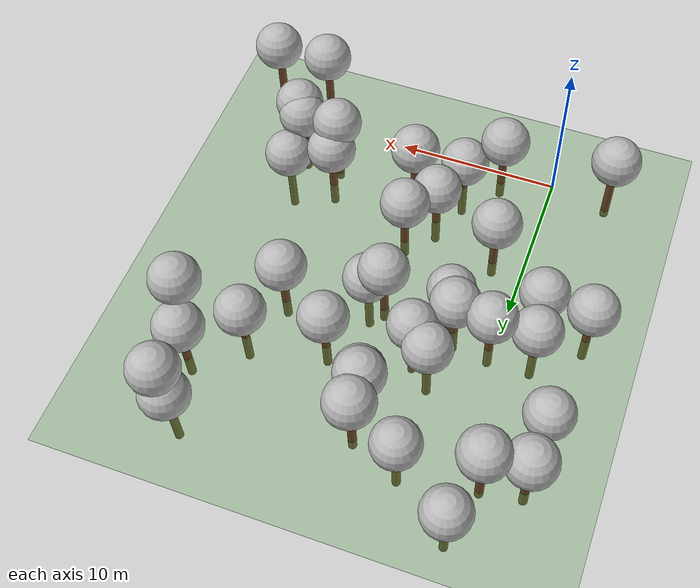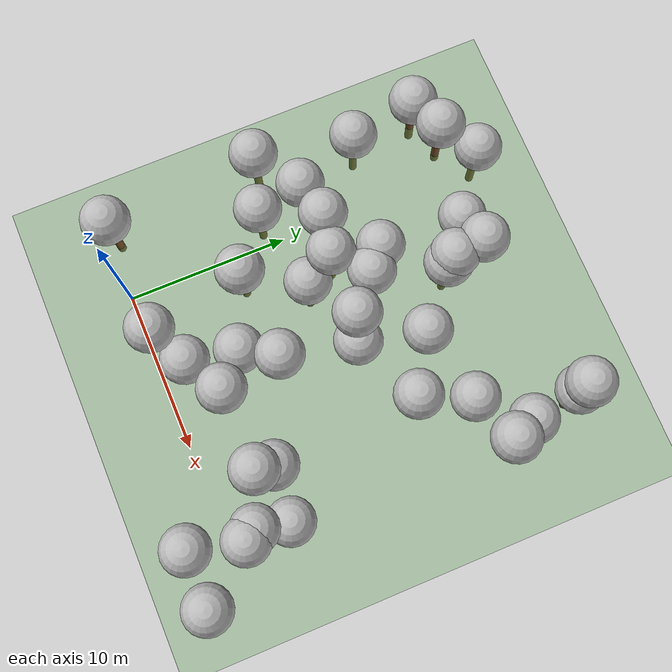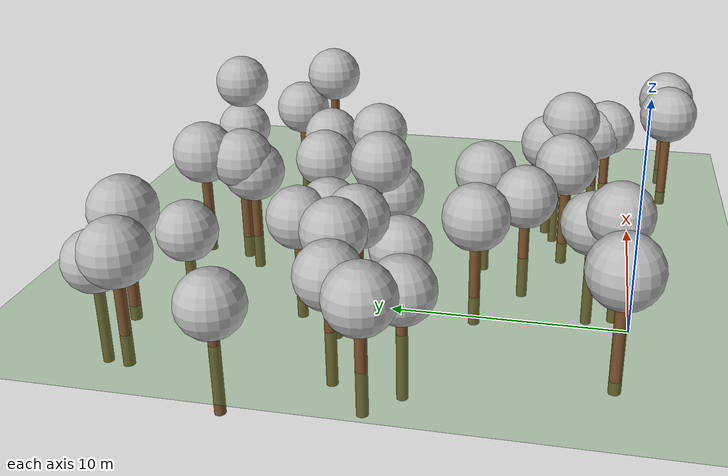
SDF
<sdf version="1.5">
 <world name="default">
  <model name="tree_simple497">
   <static>1</static>
   <link name="link">
    <pose>0 0 0.1 0 -0 0</pose>
    <collision name="collision_trunk">
     <pose>0 0 2 0 -0 0</pose>
     <geometry><cylinder><radius>0.25</radius><length>4</length></cylinder></geometry>
    </collision>
    <collision name="collision_treetop">
     <pose>0 0 5.2 0 -0 0</pose>
     <geometry><sphere><radius>1.5</radius></sphere></geometry>
    </collision>
    <visual name="trunk">
     <pose>0 0 2 0 -0 0</pose>
     <geometry><cylinder><radius>0.25</radius><length>4</length></cylinder></geometry>
     <material>
      <script>
       <uri>model://tree_simple/scripts</uri>
       <uri>model://tree_simple/materials/textures</uri>
       <name>TreeSimple/Trunk</name>
      </script>
     </material>
    </visual>
    <visual name="treetop">
     <pose>0 0 5.2 0 -0 0</pose>
     <geometry><sphere><radius>1.5</radius></sphere></geometry>
     <material>
      <script>
       <uri>model://tree_simple/scripts</uri>
       <uri>model://tree_simple/materials/textures</uri>
       <name>TreeSimple/Treetop</name>
      </script>
     </material>
    </visual>
   </link>
   <pose>16.5730666381 19.0016793819 -1.9084397085814553 0 -0 0</pose>
  </model>
  <model name="tree_simple495">
   <static>1</static>
   <link name="link">
    <pose>0 0 0.1 0 -0 0</pose>
    <collision name="collision_trunk">
     <pose>0 0 2 0 -0 0</pose>
     <geometry><cylinder><radius>0.25</radius><length>4</length></cylinder></geometry>
    </collision>
    <collision name="collision_treetop">
     <pose>0 0 5.2 0 -0 0</pose>
     <geometry><sphere><radius>1.5</radius></sphere></geometry>
    </collision>
    <visual name="trunk">
     <pose>0 0 2 0 -0 0</pose>
     <geometry><cylinder><radius>0.25</radius><length>4</length></cylinder></geometry>
     <material>
      <script>
       <uri>model://tree_simple/scripts</uri>
       <uri>model://tree_simple/materials/textures</uri>
       <name>TreeSimple/Trunk</name>
      </script>
     </material>
    </visual>
    <visual name="treetop">
     <pose>0 0 5.2 0 -0 0</pose>
     <geometry><sphere><radius>1.5</radius></sphere></geometry>
     <material>
      <script>
       <uri>model://tree_simple/scripts</uri>
       <uri>model://tree_simple/materials/textures</uri>
       <name>TreeSimple/Treetop</name>
      </script>
     </material>
    </visual>
   </link>
   <pose>13.2663357304 3.23501246435 -0.6643117824017684 0 -0 0</pose>
  </model>
  <model name="tree_simple486">
   <static>1</static>
   <link name="link">
    <pose>0 0 0.1 0 -0 0</pose>
    <collision name="collision_trunk">
     <pose>0 0 2 0 -0 0</pose>
     <geometry><cylinder><radius>0.25</radius><length>4</length></cylinder></geometry>
    </collision>
    <collision name="collision_treetop">
     <pose>0 0 5.2 0 -0 0</pose>
     <geometry><sphere><radius>1.5</radius></sphere></geometry>
    </collision>
    <visual name="trunk">
     <pose>0 0 2 0 -0 0</pose>
     <geometry><cylinder><radius>0.25</radius><length>4</length></cylinder></geometry>
     <material>
      <script>
       <uri>model://tree_simple/scripts</uri>
       <uri>model://tree_simple/materials/textures</uri>
       <name>TreeSimple/Trunk</name>
      </script>
     </material>
    </visual>
    <visual name="treetop">
     <pose>0 0 5.2 0 -0 0</pose>
     <geometry><sphere><radius>1.5</radius></sphere></geometry>
     <material>
      <script>
       <uri>model://tree_simple/scripts</uri>
       <uri>model://tree_simple/materials/textures</uri>
       <name>TreeSimple/Treetop</name>
      </script>
     </material>
    </visual>
   </link>
   <pose>8.18281559396 11.6524151823 -3.3027352705335433 0 -0 0</pose>
  </model>
  <model name="tree_simple480">
   <static>1</static>
   <link name="link">
    <pose>0 0 0.1 0 -0 0</pose>
    <collision name="collision_trunk">
     <pose>0 0 2 0 -0 0</pose>
     <geometry><cylinder><radius>0.25</radius><length>4</length></cylinder></geometry>
    </collision>
    <collision name="collision_treetop">
     <pose>0 0 5.2 0 -0 0</pose>
     <geometry><sphere><radius>1.5</radius></sphere></geometry>
    </collision>
    <visual name="trunk">
     <pose>0 0 2 0 -0 0</pose>
     <geometry><cylinder><radius>0.25</radius><length>4</length></cylinder></geometry>
     <material>
      <script>
       <uri>model://tree_simple/scripts</uri>
       <uri>model://tree_simple/materials/textures</uri>
       <name>TreeSimple/Trunk</name>
      </script>
     </material>
    </visual>
    <visual name="treetop">
     <pose>0 0 5.2 0 -0 0</pose>
     <geometry><sphere><radius>1.5</radius></sphere></geometry>
     <material>
      <script>
       <uri>model://tree_simple/scripts</uri>
       <uri>model://tree_simple/materials/textures</uri>
       <name>TreeSimple/Treetop</name>
      </script>
     </material>
    </visual>
   </link>
   <pose>-2.16211412072 12.1351070175 -2.756840422379751 0 -0 0</pose>
  </model>
  <model name="tree_simple471">
   <static>1</static>
   <link name="link">
    <pose>0 0 0.1 0 -0 0</pose>
    <collision name="collision_trunk">
     <pose>0 0 2 0 -0 0</pose>
     <geometry><cylinder><radius>0.25</radius><length>4</length></cylinder></geometry>
    </collision>
    <collision name="collision_treetop">
     <pose>0 0 5.2 0 -0 0</pose>
     <geometry><sphere><radius>1.5</radius></sphere></geometry>
    </collision>
    <visual name="trunk">
     <pose>0 0 2 0 -0 0</pose>
     <geometry><cylinder><radius>0.25</radius><length>4</length></cylinder></geometry>
     <material>
      <script>
       <uri>model://tree_simple/scripts</uri>
       <uri>model://tree_simple/materials/textures</uri>
       <name>TreeSimple/Trunk</name>
      </script>
     </material>
    </visual>
    <visual name="treetop">
     <pose>0 0 5.2 0 -0 0</pose>
     <geometry><sphere><radius>1.5</radius></sphere></geometry>
     <material>
      <script>
       <uri>model://tree_simple/scripts</uri>
       <uri>model://tree_simple/materials/textures</uri>
       <name>TreeSimple/Treetop</name>
      </script>
     </material>
    </visual>
   </link>
   <pose>-4.10985349052 16.4703272545 -3.4772862929500645 0 -0 0</pose>
  </model>
  <model name="tree_simple465">
   <static>1</static>
   <link name="link">
    <pose>0 0 0.1 0 -0 0</pose>
    <collision name="collision_trunk">
     <pose>0 0 2 0 -0 0</pose>
     <geometry><cylinder><radius>0.25</radius><length>4</length></cylinder></geometry>
    </collision>
    <collision name="collision_treetop">
     <pose>0 0 5.2 0 -0 0</pose>
     <geometry><sphere><radius>1.5</radius></sphere></geometry>
    </collision>
    <visual name="trunk">
     <pose>0 0 2 0 -0 0</pose>
     <geometry><cylinder><radius>0.25</radius><length>4</length></cylinder></geometry>
     <material>
      <script>
       <uri>model://tree_simple/scripts</uri>
       <uri>model://tree_simple/materials/textures</uri>
       <name>TreeSimple/Trunk</name>
      </script>
     </material>
    </visual>
    <visual name="treetop">
     <pose>0 0 5.2 0 -0 0</pose>
     <geometry><sphere><radius>1.5</radius></sphere></geometry>
     <material>
      <script>
       <uri>model://tree_simple/scripts</uri>
       <uri>model://tree_simple/materials/textures</uri>
       <name>TreeSimple/Treetop</name>
      </script>
     </material>
    </visual>
   </link>
   <pose>5.78708546562 20.6382949275 -0.9649354823477225 0 -0 0</pose>
  </model>
  <model name="tree_simple450">
   <static>1</static>
   <link name="link">
    <pose>0 0 0.1 0 -0 0</pose>
    <collision name="collision_trunk">
     <pose>0 0 2 0 -0 0</pose>
     <geometry><cylinder><radius>0.25</radius><length>4</length></cylinder></geometry>
    </collision>
    <collision name="collision_treetop">
     <pose>0 0 5.2 0 -0 0</pose>
     <geometry><sphere><radius>1.5</radius></sphere></geometry>
    </collision>
    <visual name="trunk">
     <pose>0 0 2 0 -0 0</pose>
     <geometry><cylinder><radius>0.25</radius><length>4</length></cylinder></geometry>
     <material>
      <script>
       <uri>model://tree_simple/scripts</uri>
       <uri>model://tree_simple/materials/textures</uri>
       <name>TreeSimple/Trunk</name>
      </script>
     </material>
    </visual>
    <visual name="treetop">
     <pose>0 0 5.2 0 -0 0</pose>
     <geometry><sphere><radius>1.5</radius></sphere></geometry>
     <material>
      <script>
       <uri>model://tree_simple/scripts</uri>
       <uri>model://tree_simple/materials/textures</uri>
       <name>TreeSimple/Treetop</name>
      </script>
     </material>
    </visual>
   </link>
   <pose>16.0273432372 22.5148519884 -0.4001102965959831 0 -0 0</pose>
  </model>
  <model name="tree_simple442">
   <static>1</static>
   <link name="link">
    <pose>0 0 0.1 0 -0 0</pose>
    <collision name="collision_trunk">
     <pose>0 0 2 0 -0 0</pose>
     <geometry><cylinder><radius>0.25</radius><length>4</length></cylinder></geometry>
    </collision>
    <collision name="collision_treetop">
     <pose>0 0 5.2 0 -0 0</pose>
     <geometry><sphere><radius>1.5</radius></sphere></geometry>
    </collision>
    <visual name="trunk">
     <pose>0 0 2 0 -0 0</pose>
     <geometry><cylinder><radius>0.25</radius><length>4</length></cylinder></geometry>
     <material>
      <script>
       <uri>model://tree_simple/scripts</uri>
       <uri>model://tree_simple/materials/textures</uri>
       <name>TreeSimple/Trunk</name>
      </script>
     </material>
    </visual>
    <visual name="treetop">
     <pose>0 0 5.2 0 -0 0</pose>
     <geometry><sphere><radius>1.5</radius></sphere></geometry>
     <material>
      <script>
       <uri>model://tree_simple/scripts</uri>
       <uri>model://tree_simple/materials/textures</uri>
       <name>TreeSimple/Treetop</name>
      </script>
     </material>
    </visual>
   </link>
   <pose>-1.68249170611 21.1094247696 -0.8250851277611297 0 -0 0</pose>
  </model>
  <model name="tree_simple421">
   <static>1</static>
   <link name="link">
    <pose>0 0 0.1 0 -0 0</pose>
    <collision name="collision_trunk">
     <pose>0 0 2 0 -0 0</pose>
     <geometry><cylinder><radius>0.25</radius><length>4</length></cylinder></geometry>
    </collision>
    <collision name="collision_treetop">
     <pose>0 0 5.2 0 -0 0</pose>
     <geometry><sphere><radius>1.5</radius></sphere></geometry>
    </collision>
    <visual name="trunk">
     <pose>0 0 2 0 -0 0</pose>
     <geometry><cylinder><radius>0.25</radius><length>4</length></cylinder></geometry>
     <material>
      <script>
       <uri>model://tree_simple/scripts</uri>
       <uri>model://tree_simple/materials/textures</uri>
       <name>TreeSimple/Trunk</name>
      </script>
     </material>
    </visual>
    <visual name="treetop">
     <pose>0 0 5.2 0 -0 0</pose>
     <geometry><sphere><radius>1.5</radius></sphere></geometry>
     <material>
      <script>
       <uri>model://tree_simple/scripts</uri>
       <uri>model://tree_simple/materials/textures</uri>
       <name>TreeSimple/Treetop</name>
      </script>
     </material>
    </visual>
   </link>
   <pose>7.02492588621 12.0559728025 -1.294714465983816 0 -0 0</pose>
  </model>
  <model name="tree_simple417">
   <static>1</static>
   <link name="link">
    <pose>0 0 0.1 0 -0 0</pose>
    <collision name="collision_trunk">
     <pose>0 0 2 0 -0 0</pose>
     <geometry><cylinder><radius>0.25</radius><length>4</length></cylinder></geometry>
    </collision>
    <collision name="collision_treetop">
     <pose>0 0 5.2 0 -0 0</pose>
     <geometry><sphere><radius>1.5</radius></sphere></geometry>
    </collision>
    <visual name="trunk">
     <pose>0 0 2 0 -0 0</pose>
     <geometry><cylinder><radius>0.25</radius><length>4</length></cylinder></geometry>
     <material>
      <script>
       <uri>model://tree_simple/scripts</uri>
       <uri>model://tree_simple/materials/textures</uri>
       <name>TreeSimple/Trunk</name>
      </script>
     </material>
    </visual>
    <visual name="treetop">
     <pose>0 0 5.2 0 -0 0</pose>
     <geometry><sphere><radius>1.5</radius></sphere></geometry>
     <material>
      <script>
       <uri>model://tree_simple/scripts</uri>
       <uri>model://tree_simple/materials/textures</uri>
       <name>TreeSimple/Treetop</name>
      </script>
     </material>
    </visual>
   </link>
   <pose>-1.82310579314 9.17527441854 -3.3135350662541594 0 -0 0</pose>
  </model>
  <model name="tree_simple412">
   <static>1</static>
   <link name="link">
    <pose>0 0 0.1 0 -0 0</pose>
    <collision name="collision_trunk">
     <pose>0 0 2 0 -0 0</pose>
     <geometry><cylinder><radius>0.25</radius><length>4</length></cylinder></geometry>
    </collision>
    <collision name="collision_treetop">
     <pose>0 0 5.2 0 -0 0</pose>
     <geometry><sphere><radius>1.5</radius></sphere></geometry>
    </collision>
    <visual name="trunk">
     <pose>0 0 2 0 -0 0</pose>
     <geometry><cylinder><radius>0.25</radius><length>4</length></cylinder></geometry>
     <material>
      <script>
       <uri>model://tree_simple/scripts</uri>
       <uri>model://tree_simple/materials/textures</uri>
       <name>TreeSimple/Trunk</name>
      </script>
     </material>
    </visual>
    <visual name="treetop">
     <pose>0 0 5.2 0 -0 0</pose>
     <geometry><sphere><radius>1.5</radius></sphere></geometry>
     <material>
      <script>
       <uri>model://tree_simple/scripts</uri>
       <uri>model://tree_simple/materials/textures</uri>
       <name>TreeSimple/Treetop</name>
      </script>
     </material>
    </visual>
   </link>
   <pose>1.94235434688 6.68973059551 -1.5201629079554544 0 -0 0</pose>
  </model>
  <model name="tree_simple376">
   <static>1</static>
   <link name="link">
    <pose>0 0 0.1 0 -0 0</pose>
    <collision name="collision_trunk">
     <pose>0 0 2 0 -0 0</pose>
     <geometry><cylinder><radius>0.25</radius><length>4</length></cylinder></geometry>
    </collision>
    <collision name="collision_treetop">
     <pose>0 0 5.2 0 -0 0</pose>
     <geometry><sphere><radius>1.5</radius></sphere></geometry>
    </collision>
    <visual name="trunk">
     <pose>0 0 2 0 -0 0</pose>
     <geometry><cylinder><radius>0.25</radius><length>4</length></cylinder></geometry>
     <material>
      <script>
       <uri>model://tree_simple/scripts</uri>
       <uri>model://tree_simple/materials/textures</uri>
       <name>TreeSimple/Trunk</name>
      </script>
     </material>
    </visual>
    <visual name="treetop">
     <pose>0 0 5.2 0 -0 0</pose>
     <geometry><sphere><radius>1.5</radius></sphere></geometry>
     <material>
      <script>
       <uri>model://tree_simple/scripts</uri>
       <uri>model://tree_simple/materials/textures</uri>
       <name>TreeSimple/Treetop</name>
      </script>
     </material>
    </visual>
   </link>
   <pose>-3.57495660346 0.511559407044 -0.6990447691165629 0 -0 0</pose>
  </model>
  <model name="tree_simple350">
   <static>1</static>
   <link name="link">
    <pose>0 0 0.1 0 -0 0</pose>
    <collision name="collision_trunk">
     <pose>0 0 2 0 -0 0</pose>
     <geometry><cylinder><radius>0.25</radius><length>4</length></cylinder></geometry>
    </collision>
    <collision name="collision_treetop">
     <pose>0 0 5.2 0 -0 0</pose>
     <geometry><sphere><radius>1.5</radius></sphere></geometry>
    </collision>
    <visual name="trunk">
     <pose>0 0 2 0 -0 0</pose>
     <geometry><cylinder><radius>0.25</radius><length>4</length></cylinder></geometry>
     <material>
      <script>
       <uri>model://tree_simple/scripts</uri>
       <uri>model://tree_simple/materials/textures</uri>
       <name>TreeSimple/Trunk</name>
      </script>
     </material>
    </visual>
    <visual name="treetop">
     <pose>0 0 5.2 0 -0 0</pose>
     <geometry><sphere><radius>1.5</radius></sphere></geometry>
     <material>
      <script>
       <uri>model://tree_simple/scripts</uri>
       <uri>model://tree_simple/materials/textures</uri>
       <name>TreeSimple/Treetop</name>
      </script>
     </material>
    </visual>
   </link>
   <pose>5.40258361507 1.7380066323 -2.9412074479430474 0 -0 0</pose>
  </model>
  <model name="tree_simple346">
   <static>1</static>
   <link name="link">
    <pose>0 0 0.1 0 -0 0</pose>
    <collision name="collision_trunk">
     <pose>0 0 2 0 -0 0</pose>
     <geometry><cylinder><radius>0.25</radius><length>4</length></cylinder></geometry>
    </collision>
    <collision name="collision_treetop">
     <pose>0 0 5.2 0 -0 0</pose>
     <geometry><sphere><radius>1.5</radius></sphere></geometry>
    </collision>
    <visual name="trunk">
     <pose>0 0 2 0 -0 0</pose>
     <geometry><cylinder><radius>0.25</radius><length>4</length></cylinder></geometry>
     <material>
      <script>
       <uri>model://tree_simple/scripts</uri>
       <uri>model://tree_simple/materials/textures</uri>
       <name>TreeSimple/Trunk</name>
      </script>
     </material>
    </visual>
    <visual name="treetop">
     <pose>0 0 5.2 0 -0 0</pose>
     <geometry><sphere><radius>1.5</radius></sphere></geometry>
     <material>
      <script>
       <uri>model://tree_simple/scripts</uri>
       <uri>model://tree_simple/materials/textures</uri>
       <name>TreeSimple/Treetop</name>
      </script>
     </material>
    </visual>
   </link>
   <pose>6.18558583868 4.91340003373 -2.2031794522893877 0 -0 0</pose>
  </model>
  <model name="tree_simple324">
   <static>1</static>
   <link name="link">
    <pose>0 0 0.1 0 -0 0</pose>
    <collision name="collision_trunk">
     <pose>0 0 2 0 -0 0</pose>
     <geometry><cylinder><radius>0.25</radius><length>4</length></cylinder></geometry>
    </collision>
    <collision name="collision_treetop">
     <pose>0 0 5.2 0 -0 0</pose>
     <geometry><sphere><radius>1.5</radius></sphere></geometry>
    </collision>
    <visual name="trunk">
     <pose>0 0 2 0 -0 0</pose>
     <geometry><cylinder><radius>0.25</radius><length>4</length></cylinder></geometry>
     <material>
      <script>
       <uri>model://tree_simple/scripts</uri>
       <uri>model://tree_simple/materials/textures</uri>
       <name>TreeSimple/Trunk</name>
      </script>
     </material>
    </visual>
    <visual name="treetop">
     <pose>0 0 5.2 0 -0 0</pose>
     <geometry><sphere><radius>1.5</radius></sphere></geometry>
     <material>
      <script>
       <uri>model://tree_simple/scripts</uri>
       <uri>model://tree_simple/materials/textures</uri>
       <name>TreeSimple/Treetop</name>
      </script>
     </material>
    </visual>
   </link>
   <pose>2.67974288493 12.1656578915 -2.3081157315531735 0 -0 0</pose>
  </model>
  <model name="tree_simple316">
   <static>1</static>
   <link name="link">
    <pose>0 0 0.1 0 -0 0</pose>
    <collision name="collision_trunk">
     <pose>0 0 2 0 -0 0</pose>
     <geometry><cylinder><radius>0.25</radius><length>4</length></cylinder></geometry>
    </collision>
    <collision name="collision_treetop">
     <pose>0 0 5.2 0 -0 0</pose>
     <geometry><sphere><radius>1.5</radius></sphere></geometry>
    </collision>
    <visual name="trunk">
     <pose>0 0 2 0 -0 0</pose>
     <geometry><cylinder><radius>0.25</radius><length>4</length></cylinder></geometry>
     <material>
      <script>
       <uri>model://tree_simple/scripts</uri>
       <uri>model://tree_simple/materials/textures</uri>
       <name>TreeSimple/Trunk</name>
      </script>
     </material>
    </visual>
    <visual name="treetop">
     <pose>0 0 5.2 0 -0 0</pose>
     <geometry><sphere><radius>1.5</radius></sphere></geometry>
     <material>
      <script>
       <uri>model://tree_simple/scripts</uri>
       <uri>model://tree_simple/materials/textures</uri>
       <name>TreeSimple/Treetop</name>
      </script>
     </material>
    </visual>
   </link>
   <pose>19.3529599153 -1.91242662106 -0.9998372279866747 0 -0 0</pose>
  </model>
  <model name="tree_simple314">
   <static>1</static>
   <link name="link">
    <pose>0 0 0.1 0 -0 0</pose>
    <collision name="collision_trunk">
     <pose>0 0 2 0 -0 0</pose>
     <geometry><cylinder><radius>0.25</radius><length>4</length></cylinder></geometry>
    </collision>
    <collision name="collision_treetop">
     <pose>0 0 5.2 0 -0 0</pose>
     <geometry><sphere><radius>1.5</radius></sphere></geometry>
    </collision>
    <visual name="trunk">
     <pose>0 0 2 0 -0 0</pose>
     <geometry><cylinder><radius>0.25</radius><length>4</length></cylinder></geometry>
     <material>
      <script>
       <uri>model://tree_simple/scripts</uri>
       <uri>model://tree_simple/materials/textures</uri>
       <name>TreeSimple/Trunk</name>
      </script>
     </material>
    </visual>
    <visual name="treetop">
     <pose>0 0 5.2 0 -0 0</pose>
     <geometry><sphere><radius>1.5</radius></sphere></geometry>
     <material>
      <script>
       <uri>model://tree_simple/scripts</uri>
       <uri>model://tree_simple/materials/textures</uri>
       <name>TreeSimple/Treetop</name>
      </script>
     </material>
    </visual>
   </link>
   <pose>15.9305866253 -1.88175491407 -0.8595585442341938 0 -0 0</pose>
  </model>
  <model name="tree_simple308">
   <static>1</static>
   <link name="link">
    <pose>0 0 0.1 0 -0 0</pose>
    <collision name="collision_trunk">
     <pose>0 0 2 0 -0 0</pose>
     <geometry><cylinder><radius>0.25</radius><length>4</length></cylinder></geometry>
    </collision>
    <collision name="collision_treetop">
     <pose>0 0 5.2 0 -0 0</pose>
     <geometry><sphere><radius>1.5</radius></sphere></geometry>
    </collision>
    <visual name="trunk">
     <pose>0 0 2 0 -0 0</pose>
     <geometry><cylinder><radius>0.25</radius><length>4</length></cylinder></geometry>
     <material>
      <script>
       <uri>model://tree_simple/scripts</uri>
       <uri>model://tree_simple/materials/textures</uri>
       <name>TreeSimple/Trunk</name>
      </script>
     </material>
    </visual>
    <visual name="treetop">
     <pose>0 0 5.2 0 -0 0</pose>
     <geometry><sphere><radius>1.5</radius></sphere></geometry>
     <material>
      <script>
       <uri>model://tree_simple/scripts</uri>
       <uri>model://tree_simple/materials/textures</uri>
       <name>TreeSimple/Treetop</name>
      </script>
     </material>
    </visual>
   </link>
   <pose>3.23733276298 0.582978933188 -1.4821648328928578 0 -0 0</pose>
  </model>
  <model name="tree_simple304">
   <static>1</static>
   <link name="link">
    <pose>0 0 0.1 0 -0 0</pose>
    <collision name="collision_trunk">
     <pose>0 0 2 0 -0 0</pose>
     <geometry><cylinder><radius>0.25</radius><length>4</length></cylinder></geometry>
    </collision>
    <collision name="collision_treetop">
     <pose>0 0 5.2 0 -0 0</pose>
     <geometry><sphere><radius>1.5</radius></sphere></geometry>
    </collision>
    <visual name="trunk">
     <pose>0 0 2 0 -0 0</pose>
     <geometry><cylinder><radius>0.25</radius><length>4</length></cylinder></geometry>
     <material>
      <script>
       <uri>model://tree_simple/scripts</uri>
       <uri>model://tree_simple/materials/textures</uri>
       <name>TreeSimple/Trunk</name>
      </script>
     </material>
    </visual>
    <visual name="treetop">
     <pose>0 0 5.2 0 -0 0</pose>
     <geometry><sphere><radius>1.5</radius></sphere></geometry>
     <material>
      <script>
       <uri>model://tree_simple/scripts</uri>
       <uri>model://tree_simple/materials/textures</uri>
       <name>TreeSimple/Treetop</name>
      </script>
     </material>
    </visual>
   </link>
   <pose>12.7492321523 13.4736505169 -1.7416331535165575 0 -0 0</pose>
  </model>
  <model name="tree_simple269">
   <static>1</static>
   <link name="link">
    <pose>0 0 0.1 0 -0 0</pose>
    <collision name="collision_trunk">
     <pose>0 0 2 0 -0 0</pose>
     <geometry><cylinder><radius>0.25</radius><length>4</length></cylinder></geometry>
    </collision>
    <collision name="collision_treetop">
     <pose>0 0 5.2 0 -0 0</pose>
     <geometry><sphere><radius>1.5</radius></sphere></geometry>
    </collision>
    <visual name="trunk">
     <pose>0 0 2 0 -0 0</pose>
     <geometry><cylinder><radius>0.25</radius><length>4</length></cylinder></geometry>
     <material>
      <script>
       <uri>model://tree_simple/scripts</uri>
       <uri>model://tree_simple/materials/textures</uri>
       <name>TreeSimple/Trunk</name>
      </script>
     </material>
    </visual>
    <visual name="treetop">
     <pose>0 0 5.2 0 -0 0</pose>
     <geometry><sphere><radius>1.5</radius></sphere></geometry>
     <material>
      <script>
       <uri>model://tree_simple/scripts</uri>
       <uri>model://tree_simple/materials/textures</uri>
       <name>TreeSimple/Treetop</name>
      </script>
     </material>
    </visual>
   </link>
   <pose>3.4316618278 10.3418603378 -4.0 0 -0 0</pose>
  </model>
  <model name="tree_simple246">
   <static>1</static>
   <link name="link">
    <pose>0 0 0.1 0 -0 0</pose>
    <collision name="collision_trunk">
     <pose>0 0 2 0 -0 0</pose>
     <geometry><cylinder><radius>0.25</radius><length>4</length></cylinder></geometry>
    </collision>
    <collision name="collision_treetop">
     <pose>0 0 5.2 0 -0 0</pose>
     <geometry><sphere><radius>1.5</radius></sphere></geometry>
    </collision>
    <visual name="trunk">
     <pose>0 0 2 0 -0 0</pose>
     <geometry><cylinder><radius>0.25</radius><length>4</length></cylinder></geometry>
     <material>
      <script>
       <uri>model://tree_simple/scripts</uri>
       <uri>model://tree_simple/materials/textures</uri>
       <name>TreeSimple/Trunk</name>
      </script>
     </material>
    </visual>
    <visual name="treetop">
     <pose>0 0 5.2 0 -0 0</pose>
     <geometry><sphere><radius>1.5</radius></sphere></geometry>
     <material>
      <script>
       <uri>model://tree_simple/scripts</uri>
       <uri>model://tree_simple/materials/textures</uri>
       <name>TreeSimple/Treetop</name>
      </script>
     </material>
    </visual>
   </link>
   <pose>4.59531277399 14.0377896265 -2.8733754855464717 0 -0 0</pose>
  </model>
  <model name="tree_simple214">
   <static>1</static>
   <link name="link">
    <pose>0 0 0.1 0 -0 0</pose>
    <collision name="collision_trunk">
     <pose>0 0 2 0 -0 0</pose>
     <geometry><cylinder><radius>0.25</radius><length>4</length></cylinder></geometry>
    </collision>
    <collision name="collision_treetop">
     <pose>0 0 5.2 0 -0 0</pose>
     <geometry><sphere><radius>1.5</radius></sphere></geometry>
    </collision>
    <visual name="trunk">
     <pose>0 0 2 0 -0 0</pose>
     <geometry><cylinder><radius>0.25</radius><length>4</length></cylinder></geometry>
     <material>
      <script>
       <uri>model://tree_simple/scripts</uri>
       <uri>model://tree_simple/materials/textures</uri>
       <name>TreeSimple/Trunk</name>
      </script>
     </material>
    </visual>
    <visual name="treetop">
     <pose>0 0 5.2 0 -0 0</pose>
     <geometry><sphere><radius>1.5</radius></sphere></geometry>
     <material>
      <script>
       <uri>model://tree_simple/scripts</uri>
       <uri>model://tree_simple/materials/textures</uri>
       <name>TreeSimple/Treetop</name>
      </script>
     </material>
    </visual>
   </link>
   <pose>16.4618787814 3.98227082292 -4.0 0 -0 0</pose>
  </model>
  <model name="tree_simple177">
   <static>1</static>
   <link name="link">
    <pose>0 0 0.1 0 -0 0</pose>
    <collision name="collision_trunk">
     <pose>0 0 2 0 -0 0</pose>
     <geometry><cylinder><radius>0.25</radius><length>4</length></cylinder></geometry>
    </collision>
    <collision name="collision_treetop">
     <pose>0 0 5.2 0 -0 0</pose>
     <geometry><sphere><radius>1.5</radius></sphere></geometry>
    </collision>
    <visual name="trunk">
     <pose>0 0 2 0 -0 0</pose>
     <geometry><cylinder><radius>0.25</radius><length>4</length></cylinder></geometry>
     <material>
      <script>
       <uri>model://tree_simple/scripts</uri>
       <uri>model://tree_simple/materials/textures</uri>
       <name>TreeSimple/Trunk</name>
      </script>
     </material>
    </visual>
    <visual name="treetop">
     <pose>0 0 5.2 0 -0 0</pose>
     <geometry><sphere><radius>1.5</radius></sphere></geometry>
     <material>
      <script>
       <uri>model://tree_simple/scripts</uri>
       <uri>model://tree_simple/materials/textures</uri>
       <name>TreeSimple/Treetop</name>
      </script>
     </material>
    </visual>
   </link>
   <pose>5.95472873547 18.7195439191 -1.2420540256108605 0 -0 0</pose>
  </model>
  <model name="tree_simple175">
   <static>1</static>
   <link name="link">
    <pose>0 0 0.1 0 -0 0</pose>
    <collision name="collision_trunk">
     <pose>0 0 2 0 -0 0</pose>
     <geometry><cylinder><radius>0.25</radius><length>4</length></cylinder></geometry>
    </collision>
    <collision name="collision_treetop">
     <pose>0 0 5.2 0 -0 0</pose>
     <geometry><sphere><radius>1.5</radius></sphere></geometry>
    </collision>
    <visual name="trunk">
     <pose>0 0 2 0 -0 0</pose>
     <geometry><cylinder><radius>0.25</radius><length>4</length></cylinder></geometry>
     <material>
      <script>
       <uri>model://tree_simple/scripts</uri>
       <uri>model://tree_simple/materials/textures</uri>
       <name>TreeSimple/Trunk</name>
      </script>
     </material>
    </visual>
    <visual name="treetop">
     <pose>0 0 5.2 0 -0 0</pose>
     <geometry><sphere><radius>1.5</radius></sphere></geometry>
     <material>
      <script>
       <uri>model://tree_simple/scripts</uri>
       <uri>model://tree_simple/materials/textures</uri>
       <name>TreeSimple/Treetop</name>
      </script>
     </material>
    </visual>
   </link>
   <pose>-0.556108098606 23.4554331428 -4.0 0 -0 0</pose>
  </model>
  <model name="tree_simple160">
   <static>1</static>
   <link name="link">
    <pose>0 0 0.1 0 -0 0</pose>
    <collision name="collision_trunk">
     <pose>0 0 2 0 -0 0</pose>
     <geometry><cylinder><radius>0.25</radius><length>4</length></cylinder></geometry>
    </collision>
    <collision name="collision_treetop">
     <pose>0 0 5.2 0 -0 0</pose>
     <geometry><sphere><radius>1.5</radius></sphere></geometry>
    </collision>
    <visual name="trunk">
     <pose>0 0 2 0 -0 0</pose>
     <geometry><cylinder><radius>0.25</radius><length>4</length></cylinder></geometry>
     <material>
      <script>
       <uri>model://tree_simple/scripts</uri>
       <uri>model://tree_simple/materials/textures</uri>
       <name>TreeSimple/Trunk</name>
      </script>
     </material>
    </visual>
    <visual name="treetop">
     <pose>0 0 5.2 0 -0 0</pose>
     <geometry><sphere><radius>1.5</radius></sphere></geometry>
     <material>
      <script>
       <uri>model://tree_simple/scripts</uri>
       <uri>model://tree_simple/materials/textures</uri>
       <name>TreeSimple/Treetop</name>
      </script>
     </material>
    </visual>
   </link>
   <pose>3.31258380175 15.1525774981 -2.8698146318807023 0 -0 0</pose>
  </model>
  <model name="tree_simple145">
   <static>1</static>
   <link name="link">
    <pose>0 0 0.1 0 -0 0</pose>
    <collision name="collision_trunk">
     <pose>0 0 2 0 -0 0</pose>
     <geometry><cylinder><radius>0.25</radius><length>4</length></cylinder></geometry>
    </collision>
    <collision name="collision_treetop">
     <pose>0 0 5.2 0 -0 0</pose>
     <geometry><sphere><radius>1.5</radius></sphere></geometry>
    </collision>
    <visual name="trunk">
     <pose>0 0 2 0 -0 0</pose>
     <geometry><cylinder><radius>0.25</radius><length>4</length></cylinder></geometry>
     <material>
      <script>
       <uri>model://tree_simple/scripts</uri>
       <uri>model://tree_simple/materials/textures</uri>
       <name>TreeSimple/Trunk</name>
      </script>
     </material>
    </visual>
    <visual name="treetop">
     <pose>0 0 5.2 0 -0 0</pose>
     <geometry><sphere><radius>1.5</radius></sphere></geometry>
     <material>
      <script>
       <uri>model://tree_simple/scripts</uri>
       <uri>model://tree_simple/materials/textures</uri>
       <name>TreeSimple/Treetop</name>
      </script>
     </material>
    </visual>
   </link>
   <pose>7.53257093085 6.9864658102 -1.6267110523155155 0 -0 0</pose>
  </model>
  <model name="tree_simple130">
   <static>1</static>
   <link name="link">
    <pose>0 0 0.1 0 -0 0</pose>
    <collision name="collision_trunk">
     <pose>0 0 2 0 -0 0</pose>
     <geometry><cylinder><radius>0.25</radius><length>4</length></cylinder></geometry>
    </collision>
    <collision name="collision_treetop">
     <pose>0 0 5.2 0 -0 0</pose>
     <geometry><sphere><radius>1.5</radius></sphere></geometry>
    </collision>
    <visual name="trunk">
     <pose>0 0 2 0 -0 0</pose>
     <geometry><cylinder><radius>0.25</radius><length>4</length></cylinder></geometry>
     <material>
      <script>
       <uri>model://tree_simple/scripts</uri>
       <uri>model://tree_simple/materials/textures</uri>
       <name>TreeSimple/Trunk</name>
      </script>
     </material>
    </visual>
    <visual name="treetop">
     <pose>0 0 5.2 0 -0 0</pose>
     <geometry><sphere><radius>1.5</radius></sphere></geometry>
     <material>
      <script>
       <uri>model://tree_simple/scripts</uri>
       <uri>model://tree_simple/materials/textures</uri>
       <name>TreeSimple/Treetop</name>
      </script>
     </material>
    </visual>
   </link>
   <pose>-4.79782028342 10.1484836022 -2.18910743376283 0 -0 0</pose>
  </model>
  <model name="tree_simple98">
   <static>1</static>
   <link name="link">
    <pose>0 0 0.1 0 -0 0</pose>
    <collision name="collision_trunk">
     <pose>0 0 2 0 -0 0</pose>
     <geometry><cylinder><radius>0.25</radius><length>4</length></cylinder></geometry>
    </collision>
    <collision name="collision_treetop">
     <pose>0 0 5.2 0 -0 0</pose>
     <geometry><sphere><radius>1.5</radius></sphere></geometry>
    </collision>
    <visual name="trunk">
     <pose>0 0 2 0 -0 0</pose>
     <geometry><cylinder><radius>0.25</radius><length>4</length></cylinder></geometry>
     <material>
      <script>
       <uri>model://tree_simple/scripts</uri>
       <uri>model://tree_simple/materials/textures</uri>
       <name>TreeSimple/Trunk</name>
      </script>
     </material>
    </visual>
    <visual name="treetop">
     <pose>0 0 5.2 0 -0 0</pose>
     <geometry><sphere><radius>1.5</radius></sphere></geometry>
     <material>
      <script>
       <uri>model://tree_simple/scripts</uri>
       <uri>model://tree_simple/materials/textures</uri>
       <name>TreeSimple/Treetop</name>
      </script>
     </material>
    </visual>
   </link>
   <pose>14.024693035 16.5700471203 -2.587982883229239 0 -0 0</pose>
  </model>
  <model name="tree_simple95">
   <static>1</static>
   <link name="link">
    <pose>0 0 0.1 0 -0 0</pose>
    <collision name="collision_trunk">
     <pose>0 0 2 0 -0 0</pose>
     <geometry><cylinder><radius>0.25</radius><length>4</length></cylinder></geometry>
    </collision>
    <collision name="collision_treetop">
     <pose>0 0 5.2 0 -0 0</pose>
     <geometry><sphere><radius>1.5</radius></sphere></geometry>
    </collision>
    <visual name="trunk">
     <pose>0 0 2 0 -0 0</pose>
     <geometry><cylinder><radius>0.25</radius><length>4</length></cylinder></geometry>
     <material>
      <script>
       <uri>model://tree_simple/scripts</uri>
       <uri>model://tree_simple/materials/textures</uri>
       <name>TreeSimple/Trunk</name>
      </script>
     </material>
    </visual>
    <visual name="treetop">
     <pose>0 0 5.2 0 -0 0</pose>
     <geometry><sphere><radius>1.5</radius></sphere></geometry>
     <material>
      <script>
       <uri>model://tree_simple/scripts</uri>
       <uri>model://tree_simple/materials/textures</uri>
       <name>TreeSimple/Treetop</name>
      </script>
     </material>
    </visual>
   </link>
   <pose>3.20302207312 20.7020436907 -4.0 0 -0 0</pose>
  </model>
  <model name="tree_simple94">
   <static>1</static>
   <link name="link">
    <pose>0 0 0.1 0 -0 0</pose>
    <collision name="collision_trunk">
     <pose>0 0 2 0 -0 0</pose>
     <geometry><cylinder><radius>0.25</radius><length>4</length></cylinder></geometry>
    </collision>
    <collision name="collision_treetop">
     <pose>0 0 5.2 0 -0 0</pose>
     <geometry><sphere><radius>1.5</radius></sphere></geometry>
    </collision>
    <visual name="trunk">
     <pose>0 0 2 0 -0 0</pose>
     <geometry><cylinder><radius>0.25</radius><length>4</length></cylinder></geometry>
     <material>
      <script>
       <uri>model://tree_simple/scripts</uri>
       <uri>model://tree_simple/materials/textures</uri>
       <name>TreeSimple/Trunk</name>
      </script>
     </material>
    </visual>
    <visual name="treetop">
     <pose>0 0 5.2 0 -0 0</pose>
     <geometry><sphere><radius>1.5</radius></sphere></geometry>
     <material>
      <script>
       <uri>model://tree_simple/scripts</uri>
       <uri>model://tree_simple/materials/textures</uri>
       <name>TreeSimple/Treetop</name>
      </script>
     </material>
    </visual>
   </link>
   <pose>6.14879298853 18.2743585392 -1.8713458933065346 0 -0 0</pose>
  </model>
  <model name="tree_simple86">
   <static>1</static>
   <link name="link">
    <pose>0 0 0.1 0 -0 0</pose>
    <collision name="collision_trunk">
     <pose>0 0 2 0 -0 0</pose>
     <geometry><cylinder><radius>0.25</radius><length>4</length></cylinder></geometry>
    </collision>
    <collision name="collision_treetop">
     <pose>0 0 5.2 0 -0 0</pose>
     <geometry><sphere><radius>1.5</radius></sphere></geometry>
    </collision>
    <visual name="trunk">
     <pose>0 0 2 0 -0 0</pose>
     <geometry><cylinder><radius>0.25</radius><length>4</length></cylinder></geometry>
     <material>
      <script>
       <uri>model://tree_simple/scripts</uri>
       <uri>model://tree_simple/materials/textures</uri>
       <name>TreeSimple/Trunk</name>
      </script>
     </material>
    </visual>
    <visual name="treetop">
     <pose>0 0 5.2 0 -0 0</pose>
     <geometry><sphere><radius>1.5</radius></sphere></geometry>
     <material>
      <script>
       <uri>model://tree_simple/scripts</uri>
       <uri>model://tree_simple/materials/textures</uri>
       <name>TreeSimple/Treetop</name>
      </script>
     </material>
    </visual>
   </link>
   <pose>-4.02162942473 20.3702086514 -1.610225877232247 0 -0 0</pose>
  </model>
  <model name="tree_simple85">
   <static>1</static>
   <link name="link">
    <pose>0 0 0.1 0 -0 0</pose>
    <collision name="collision_trunk">
     <pose>0 0 2 0 -0 0</pose>
     <geometry><cylinder><radius>0.25</radius><length>4</length></cylinder></geometry>
    </collision>
    <collision name="collision_treetop">
     <pose>0 0 5.2 0 -0 0</pose>
     <geometry><sphere><radius>1.5</radius></sphere></geometry>
    </collision>
    <visual name="trunk">
     <pose>0 0 2 0 -0 0</pose>
     <geometry><cylinder><radius>0.25</radius><length>4</length></cylinder></geometry>
     <material>
      <script>
       <uri>model://tree_simple/scripts</uri>
       <uri>model://tree_simple/materials/textures</uri>
       <name>TreeSimple/Trunk</name>
      </script>
     </material>
    </visual>
    <visual name="treetop">
     <pose>0 0 5.2 0 -0 0</pose>
     <geometry><sphere><radius>1.5</radius></sphere></geometry>
     <material>
      <script>
       <uri>model://tree_simple/scripts</uri>
       <uri>model://tree_simple/materials/textures</uri>
       <name>TreeSimple/Treetop</name>
      </script>
     </material>
    </visual>
   </link>
   <pose>9.34911088968 15.5834050792 -2.2440456345478523 0 -0 0</pose>
  </model>
  <model name="tree_simple84">
   <static>1</static>
   <link name="link">
    <pose>0 0 0.1 0 -0 0</pose>
    <collision name="collision_trunk">
     <pose>0 0 2 0 -0 0</pose>
     <geometry><cylinder><radius>0.25</radius><length>4</length></cylinder></geometry>
    </collision>
    <collision name="collision_treetop">
     <pose>0 0 5.2 0 -0 0</pose>
     <geometry><sphere><radius>1.5</radius></sphere></geometry>
    </collision>
    <visual name="trunk">
     <pose>0 0 2 0 -0 0</pose>
     <geometry><cylinder><radius>0.25</radius><length>4</length></cylinder></geometry>
     <material>
      <script>
       <uri>model://tree_simple/scripts</uri>
       <uri>model://tree_simple/materials/textures</uri>
       <name>TreeSimple/Trunk</name>
      </script>
     </material>
    </visual>
    <visual name="treetop">
     <pose>0 0 5.2 0 -0 0</pose>
     <geometry><sphere><radius>1.5</radius></sphere></geometry>
     <material>
      <script>
       <uri>model://tree_simple/scripts</uri>
       <uri>model://tree_simple/materials/textures</uri>
       <name>TreeSimple/Treetop</name>
      </script>
     </material>
    </visual>
   </link>
   <pose>17.2995655595 17.2600237407 -0.0 0 -0 0</pose>
  </model>
  <model name="tree_simple81">
   <static>1</static>
   <link name="link">
    <pose>0 0 0.1 0 -0 0</pose>
    <collision name="collision_trunk">
     <pose>0 0 2 0 -0 0</pose>
     <geometry><cylinder><radius>0.25</radius><length>4</length></cylinder></geometry>
    </collision>
    <collision name="collision_treetop">
     <pose>0 0 5.2 0 -0 0</pose>
     <geometry><sphere><radius>1.5</radius></sphere></geometry>
    </collision>
    <visual name="trunk">
     <pose>0 0 2 0 -0 0</pose>
     <geometry><cylinder><radius>0.25</radius><length>4</length></cylinder></geometry>
     <material>
      <script>
       <uri>model://tree_simple/scripts</uri>
       <uri>model://tree_simple/materials/textures</uri>
       <name>TreeSimple/Trunk</name>
      </script>
     </material>
    </visual>
    <visual name="treetop">
     <pose>0 0 5.2 0 -0 0</pose>
     <geometry><sphere><radius>1.5</radius></sphere></geometry>
     <material>
      <script>
       <uri>model://tree_simple/scripts</uri>
       <uri>model://tree_simple/materials/textures</uri>
       <name>TreeSimple/Treetop</name>
      </script>
     </material>
    </visual>
   </link>
   <pose>13.3023094876 4.29219701126 -1.993056434771907 0 -0 0</pose>
  </model>
  <model name="tree_simple74">
   <static>1</static>
   <link name="link">
    <pose>0 0 0.1 0 -0 0</pose>
    <collision name="collision_trunk">
     <pose>0 0 2 0 -0 0</pose>
     <geometry><cylinder><radius>0.25</radius><length>4</length></cylinder></geometry>
    </collision>
    <collision name="collision_treetop">
     <pose>0 0 5.2 0 -0 0</pose>
     <geometry><sphere><radius>1.5</radius></sphere></geometry>
    </collision>
    <visual name="trunk">
     <pose>0 0 2 0 -0 0</pose>
     <geometry><cylinder><radius>0.25</radius><length>4</length></cylinder></geometry>
     <material>
      <script>
       <uri>model://tree_simple/scripts</uri>
       <uri>model://tree_simple/materials/textures</uri>
       <name>TreeSimple/Trunk</name>
      </script>
     </material>
    </visual>
    <visual name="treetop">
     <pose>0 0 5.2 0 -0 0</pose>
     <geometry><sphere><radius>1.5</radius></sphere></geometry>
     <material>
      <script>
       <uri>model://tree_simple/scripts</uri>
       <uri>model://tree_simple/materials/textures</uri>
       <name>TreeSimple/Treetop</name>
      </script>
     </material>
    </visual>
   </link>
   <pose>16.1884917497 1.95365769223 -2.3189847571426827 0 -0 0</pose>
  </model>
  <model name="tree_simple72">
   <static>1</static>
   <link name="link">
    <pose>0 0 0.1 0 -0 0</pose>
    <collision name="collision_trunk">
     <pose>0 0 2 0 -0 0</pose>
     <geometry><cylinder><radius>0.25</radius><length>4</length></cylinder></geometry>
    </collision>
    <collision name="collision_treetop">
     <pose>0 0 5.2 0 -0 0</pose>
     <geometry><sphere><radius>1.5</radius></sphere></geometry>
    </collision>
    <visual name="trunk">
     <pose>0 0 2 0 -0 0</pose>
     <geometry><cylinder><radius>0.25</radius><length>4</length></cylinder></geometry>
     <material>
      <script>
       <uri>model://tree_simple/scripts</uri>
       <uri>model://tree_simple/materials/textures</uri>
       <name>TreeSimple/Trunk</name>
      </script>
     </material>
    </visual>
    <visual name="treetop">
     <pose>0 0 5.2 0 -0 0</pose>
     <geometry><sphere><radius>1.5</radius></sphere></geometry>
     <material>
      <script>
       <uri>model://tree_simple/scripts</uri>
       <uri>model://tree_simple/materials/textures</uri>
       <name>TreeSimple/Treetop</name>
      </script>
     </material>
    </visual>
   </link>
   <pose>0.388373058104 12.6065734572 -2.0129211529553332 0 -0 0</pose>
  </model>
  <model name="tree_simple66">
   <static>1</static>
   <link name="link">
    <pose>0 0 0.1 0 -0 0</pose>
    <collision name="collision_trunk">
     <pose>0 0 2 0 -0 0</pose>
     <geometry><cylinder><radius>0.25</radius><length>4</length></cylinder></geometry>
    </collision>
    <collision name="collision_treetop">
     <pose>0 0 5.2 0 -0 0</pose>
     <geometry><sphere><radius>1.5</radius></sphere></geometry>
    </collision>
    <visual name="trunk">
     <pose>0 0 2 0 -0 0</pose>
     <geometry><cylinder><radius>0.25</radius><length>4</length></cylinder></geometry>
     <material>
      <script>
       <uri>model://tree_simple/scripts</uri>
       <uri>model://tree_simple/materials/textures</uri>
       <name>TreeSimple/Trunk</name>
      </script>
     </material>
    </visual>
    <visual name="treetop">
     <pose>0 0 5.2 0 -0 0</pose>
     <geometry><sphere><radius>1.5</radius></sphere></geometry>
     <material>
      <script>
       <uri>model://tree_simple/scripts</uri>
       <uri>model://tree_simple/materials/textures</uri>
       <name>TreeSimple/Treetop</name>
      </script>
     </material>
    </visual>
   </link>
   <pose>8.20454354684 3.17713866097 -1.215067930149082 0 -0 0</pose>
  </model>
  <model name="tree_simple49">
   <static>1</static>
   <link name="link">
    <pose>0 0 0.1 0 -0 0</pose>
    <collision name="collision_trunk">
     <pose>0 0 2 0 -0 0</pose>
     <geometry><cylinder><radius>0.25</radius><length>4</length></cylinder></geometry>
    </collision>
    <collision name="collision_treetop">
     <pose>0 0 5.2 0 -0 0</pose>
     <geometry><sphere><radius>1.5</radius></sphere></geometry>
    </collision>
    <visual name="trunk">
     <pose>0 0 2 0 -0 0</pose>
     <geometry><cylinder><radius>0.25</radius><length>4</length></cylinder></geometry>
     <material>
      <script>
       <uri>model://tree_simple/scripts</uri>
       <uri>model://tree_simple/materials/textures</uri>
       <name>TreeSimple/Trunk</name>
      </script>
     </material>
    </visual>
    <visual name="treetop">
     <pose>0 0 5.2 0 -0 0</pose>
     <geometry><sphere><radius>1.5</radius></sphere></geometry>
     <material>
      <script>
       <uri>model://tree_simple/scripts</uri>
       <uri>model://tree_simple/materials/textures</uri>
       <name>TreeSimple/Treetop</name>
      </script>
     </material>
    </visual>
   </link>
   <pose>15.9239262664 22.5111435722 -3.1590164454173415 0 -0 0</pose>
  </model>
  <model name="tree_simple48">
   <static>1</static>
   <link name="link">
    <pose>0 0 0.1 0 -0 0</pose>
    <collision name="collision_trunk">
     <pose>0 0 2 0 -0 0</pose>
     <geometry><cylinder><radius>0.25</radius><length>4</length></cylinder></geometry>
    </collision>
    <collision name="collision_treetop">
     <pose>0 0 5.2 0 -0 0</pose>
     <geometry><sphere><radius>1.5</radius></sphere></geometry>
    </collision>
    <visual name="trunk">
     <pose>0 0 2 0 -0 0</pose>
     <geometry><cylinder><radius>0.25</radius><length>4</length></cylinder></geometry>
     <material>
      <script>
       <uri>model://tree_simple/scripts</uri>
       <uri>model://tree_simple/materials/textures</uri>
       <name>TreeSimple/Trunk</name>
      </script>
     </material>
    </visual>
    <visual name="treetop">
     <pose>0 0 5.2 0 -0 0</pose>
     <geometry><sphere><radius>1.5</radius></sphere></geometry>
     <material>
      <script>
       <uri>model://tree_simple/scripts</uri>
       <uri>model://tree_simple/materials/textures</uri>
       <name>TreeSimple/Treetop</name>
      </script>
     </material>
    </visual>
   </link>
   <pose>16.6506570209 1.30699020841 -2.0601028986063645 0 -0 0</pose>
  </model>
  <model name="ground_plane">
   <static>true</static>
   <link name="link">
    <collision name="collision">
     <geometry><plane><normal>0 0 1</normal><size>250 250</size></plane></geometry>
     <surface><friction><ode><mu>1</mu><mu2>1</mu2></ode></friction></surface>
    </collision>
    <visual name="grass">
     <cast_shadows>false</cast_shadows>
     <geometry><plane><normal>0 0 1</normal><size>150 250</size></plane></geometry>
     <material>
      <script><uri>file://media/materials/scripts/Gazebo.material</uri><name>Gazebo/Grass</name></script>
     </material>
    </visual>
   </link>
  </model>
 </world>
</sdf>
